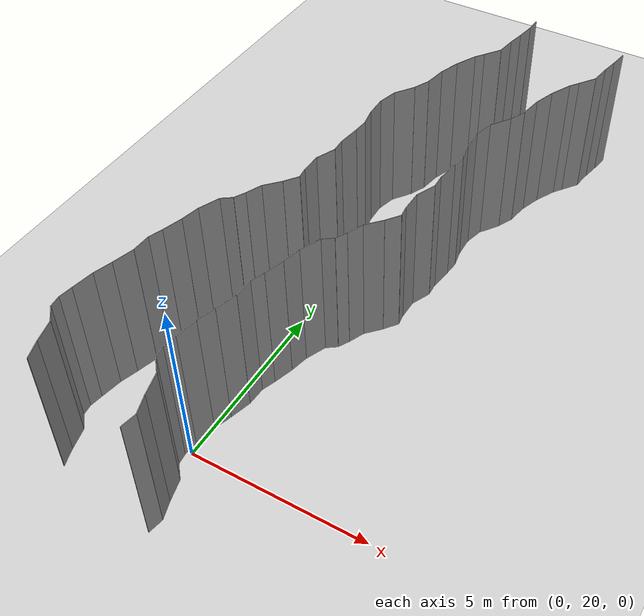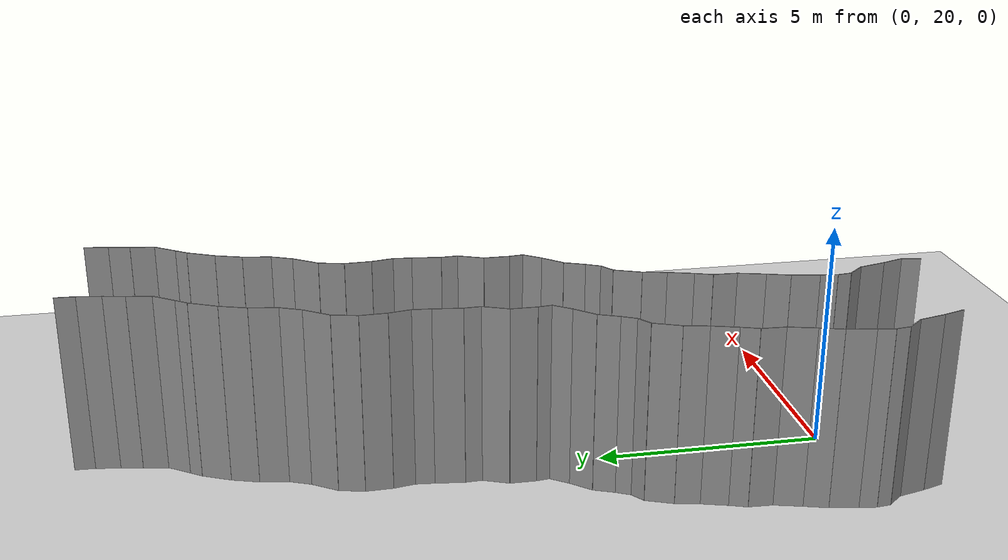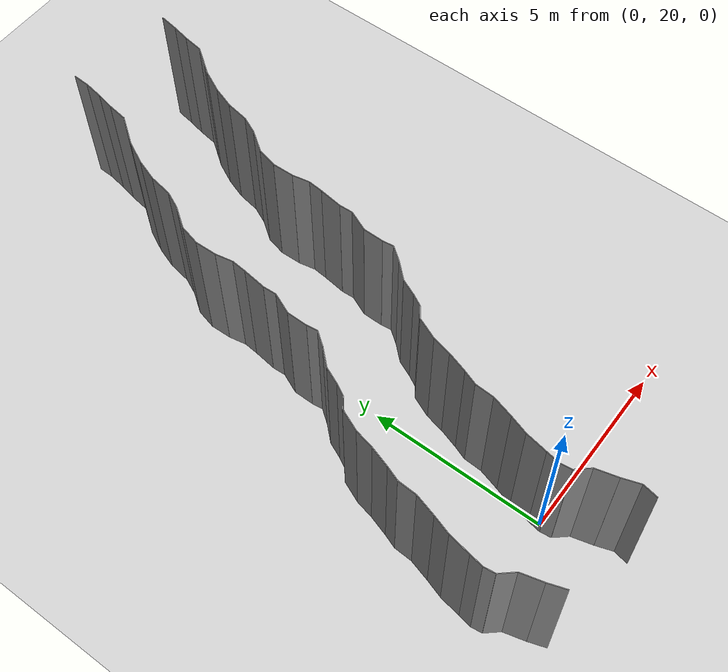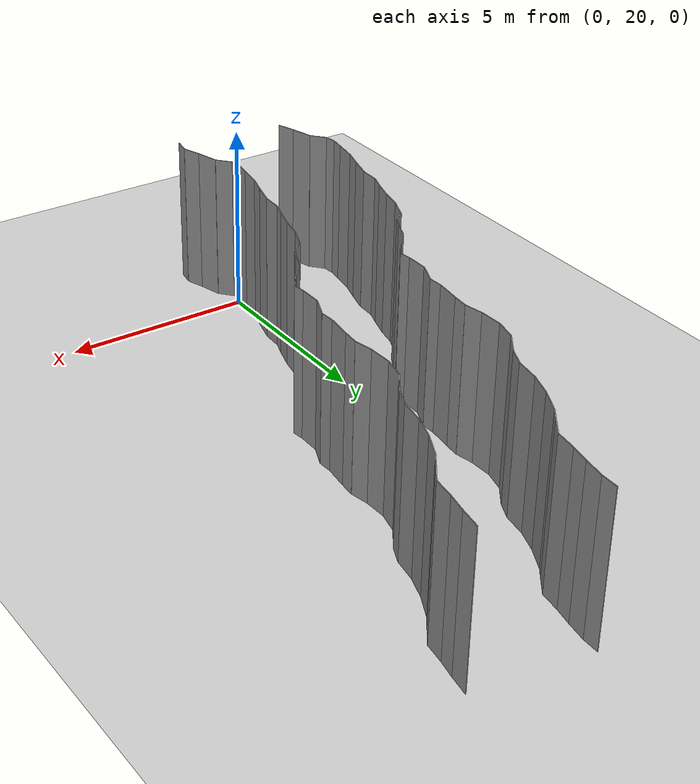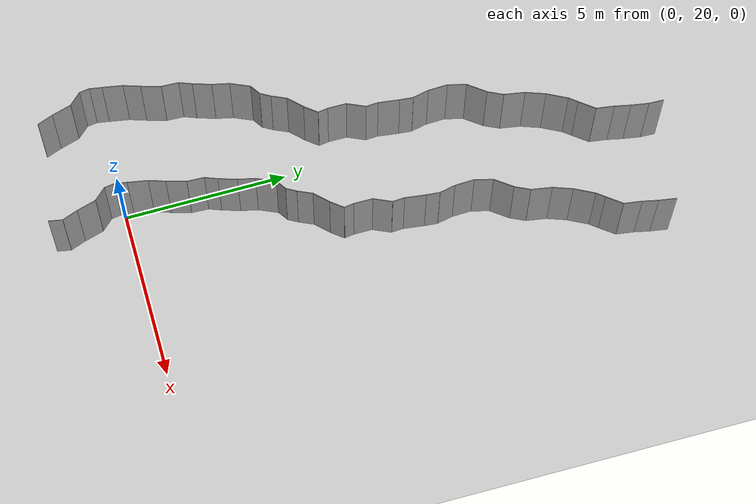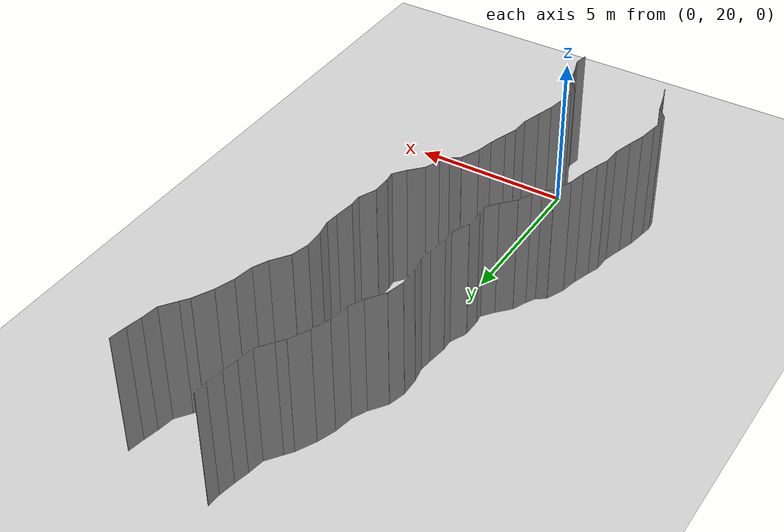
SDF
<sdf version="1.6">
 <world name="default">
  <model name="ground_plane">
   <static>1</static>
   <link name="link">
    <collision name="collision">
     <geometry><plane><normal>0 0 1</normal><size>200 200</size></plane></geometry>
     <surface><friction><ode><mu>100</mu><mu2>50</mu2></ode></friction></surface>
    </collision>
    <visual name="visual">
     <cast_shadows>0</cast_shadows>
     <geometry><plane><normal>0 0 1</normal><size>200 200</size></plane></geometry>
     <material>
      <script><uri>file://media/materials/scripts/gazebo.material</uri><name>Gazebo/Grey</name></script>
     </material>
    </visual>
   </link>
   <pose>0 100 0 0 -0 0</pose>
  </model>
  <model name="wall_73">
   <static>1</static>
   <pose>0.48561682938217876 17.948344836911566 2 0 0 -0.1761262419085541</pose>
   <link name="link">
    <collision name="collision"><geometry><box><size>0.02 0.427824801418 4</size></box></geometry></collision>
    <visual name="visual">
     <material>
      <script><name>Gazebo/Grey</name><uri>file://media/materials/scripts/gazebo.material</uri></script>
     </material>
     <geometry><box><size>0.02 0.427824801418 4</size></box></geometry>
    </visual>
   </link>
  </model>
  <model name="wall_74">
   <static>1</static>
   <pose>-2.5577974521057794 18.39851629489855 2 0 0 0.32564977725428645</pose>
   <link name="link">
    <collision name="collision"><geometry><box><size>0.02 0.505715504554 4</size></box></geometry></collision>
    <visual name="visual">
     <material>
      <script><name>Gazebo/Grey</name><uri>file://media/materials/scripts/gazebo.material</uri></script>
     </material>
     <geometry><box><size>0.02 0.505715504554 4</size></box></geometry>
    </visual>
   </link>
  </model>
  <model name="wall_75">
   <static>1</static>
   <pose>0.44220254789422064 18.39851629489855 2 0 0 0.32564977725428645</pose>
   <link name="link">
    <collision name="collision"><geometry><box><size>0.02 0.505715504554 4</size></box></geometry></collision>
    <visual name="visual">
     <material>
      <script><name>Gazebo/Grey</name><uri>file://media/materials/scripts/gazebo.material</uri></script>
     </material>
     <geometry><box><size>0.02 0.505715504554 4</size></box></geometry>
    </visual>
   </link>
  </model>
  <model name="wall_76">
   <static>1</static>
   <pose>-2.7177749737235346 18.9368754607309 2 0 0 0.25874099727943234</pose>
   <link name="link">
    <collision name="collision"><geometry><box><size>0.02 0.618158408024 4</size></box></geometry></collision>
    <visual name="visual">
     <material>
      <script><name>Gazebo/Grey</name><uri>file://media/materials/scripts/gazebo.material</uri></script>
     </material>
     <geometry><box><size>0.02 0.618158408024 4</size></box></geometry>
    </visual>
   </link>
  </model>
  <model name="wall_77">
   <static>1</static>
   <pose>0.2822250262764654 18.9368754607309 2 0 0 0.25874099727943234</pose>
   <link name="link">
    <collision name="collision"><geometry><box><size>0.02 0.618158408024 4</size></box></geometry></collision>
    <visual name="visual">
     <material>
      <script><name>Gazebo/Grey</name><uri>file://media/materials/scripts/gazebo.material</uri></script>
     </material>
     <geometry><box><size>0.02 0.618158408024 4</size></box></geometry>
    </visual>
   </link>
  </model>
  <model name="wall_78">
   <static>1</static>
   <pose>-2.9493755194007756 19.410305596714846 2 0 0 0.7178855796985041</pose>
   <link name="link">
    <collision name="collision"><geometry><box><size>0.02 0.463727275413 4</size></box></geometry></collision>
    <visual name="visual">
     <material>
      <script><name>Gazebo/Grey</name><uri>file://media/materials/scripts/gazebo.material</uri></script>
     </material>
     <geometry><box><size>0.02 0.463727275413 4</size></box></geometry>
    </visual>
   </link>
  </model>
  <model name="wall_79">
   <static>1</static>
   <pose>0.05062448059922442 19.410305596714846 2 0 0 0.7178855796985041</pose>
   <link name="link">
    <collision name="collision"><geometry><box><size>0.02 0.463727275413 4</size></box></geometry></collision>
    <visual name="visual">
     <material>
      <script><name>Gazebo/Grey</name><uri>file://media/materials/scripts/gazebo.material</uri></script>
     </material>
     <geometry><box><size>0.02 0.463727275413 4</size></box></geometry>
    </visual>
   </link>
  </model>
  <model name="wall_80">
   <static>1</static>
   <pose>-3.1224642835979983 19.74097408407429 2 0 0 0.13108063142375748</pose>
   <link name="link">
    <collision name="collision"><geometry><box><size>0.02 0.314758638549 4</size></box></geometry></collision>
    <visual name="visual">
     <material>
      <script><name>Gazebo/Grey</name><uri>file://media/materials/scripts/gazebo.material</uri></script>
     </material>
     <geometry><box><size>0.02 0.314758638549 4</size></box></geometry>
    </visual>
   </link>
  </model>
  <model name="wall_81">
   <static>1</static>
   <pose>-0.12246428359799832 19.74097408407429 2 0 0 0.13108063142375748</pose>
   <link name="link">
    <collision name="collision"><geometry><box><size>0.02 0.314758638549 4</size></box></geometry></collision>
    <visual name="visual">
     <material>
      <script><name>Gazebo/Grey</name><uri>file://media/materials/scripts/gazebo.material</uri></script>
     </material>
     <geometry><box><size>0.02 0.314758638549 4</size></box></geometry>
    </visual>
   </link>
  </model>
  <model name="wall_82">
   <static>1</static>
   <pose>-3.1129655708371335 20.08389745159527 2 0 0 -0.1595211788571715</pose>
   <link name="link">
    <collision name="collision"><geometry><box><size>0.02 0.378595189887 4</size></box></geometry></collision>
    <visual name="visual">
     <material>
      <script><name>Gazebo/Grey</name><uri>file://media/materials/scripts/gazebo.material</uri></script>
     </material>
     <geometry><box><size>0.02 0.378595189887 4</size></box></geometry>
    </visual>
   </link>
  </model>
  <model name="wall_83">
   <static>1</static>
   <pose>-0.11296557083713354 20.08389745159527 2 0 0 -0.1595211788571715</pose>
   <link name="link">
    <collision name="collision"><geometry><box><size>0.02 0.378595189887 4</size></box></geometry></collision>
    <visual name="visual">
     <material>
      <script><name>Gazebo/Grey</name><uri>file://media/materials/scripts/gazebo.material</uri></script>
     </material>
     <geometry><box><size>0.02 0.378595189887 4</size></box></geometry>
    </visual>
   </link>
  </model>
  <model name="wall_84">
   <static>1</static>
   <pose>-3.030855290555757 20.57789374265384 2 0 0 -0.16786428680608062</pose>
   <link name="link">
    <collision name="collision"><geometry><box><size>0.02 0.622960675578 4</size></box></geometry></collision>
    <visual name="visual">
     <material>
      <script><name>Gazebo/Grey</name><uri>file://media/materials/scripts/gazebo.material</uri></script>
     </material>
     <geometry><box><size>0.02 0.622960675578 4</size></box></geometry>
    </visual>
   </link>
  </model>
  <model name="wall_85">
   <static>1</static>
   <pose>-0.030855290555757087 20.57789374265384 2 0 0 -0.16786428680608062</pose>
   <link name="link">
    <collision name="collision"><geometry><box><size>0.02 0.622960675578 4</size></box></geometry></collision>
    <visual name="visual">
     <material>
      <script><name>Gazebo/Grey</name><uri>file://media/materials/scripts/gazebo.material</uri></script>
     </material>
     <geometry><box><size>0.02 0.622960675578 4</size></box></geometry>
    </visual>
   </link>
  </model>
  <model name="wall_86">
   <static>1</static>
   <pose>-2.9006292514241028 21.135343340064225 2 0 0 -0.30270741947423524</pose>
   <link name="link">
    <collision name="collision"><geometry><box><size>0.02 0.524544472162 4</size></box></geometry></collision>
    <visual name="visual">
     <material>
      <script><name>Gazebo/Grey</name><uri>file://media/materials/scripts/gazebo.material</uri></script>
     </material>
     <geometry><box><size>0.02 0.524544472162 4</size></box></geometry>
    </visual>
   </link>
  </model>
  <model name="wall_87">
   <static>1</static>
   <pose>0.09937074857589723 21.135343340064225 2 0 0 -0.30270741947423524</pose>
   <link name="link">
    <collision name="collision"><geometry><box><size>0.02 0.524544472162 4</size></box></geometry></collision>
    <visual name="visual">
     <material>
      <script><name>Gazebo/Grey</name><uri>file://media/materials/scripts/gazebo.material</uri></script>
     </material>
     <geometry><box><size>0.02 0.524544472162 4</size></box></geometry>
    </visual>
   </link>
  </model>
  <model name="wall_88">
   <static>1</static>
   <pose>-2.7397760829196005 21.682706921311766 2 0 0 -0.2714589706400116</pose>
   <link name="link">
    <collision name="collision"><geometry><box><size>0.02 0.616612103579 4</size></box></geometry></collision>
    <visual name="visual">
     <material>
      <script><name>Gazebo/Grey</name><uri>file://media/materials/scripts/gazebo.material</uri></script>
     </material>
     <geometry><box><size>0.02 0.616612103579 4</size></box></geometry>
    </visual>
   </link>
  </model>
  <model name="wall_89">
   <static>1</static>
   <pose>0.2602239170803995 21.682706921311766 2 0 0 -0.2714589706400116</pose>
   <link name="link">
    <collision name="collision"><geometry><box><size>0.02 0.616612103579 4</size></box></geometry></collision>
    <visual name="visual">
     <material>
      <script><name>Gazebo/Grey</name><uri>file://media/materials/scripts/gazebo.material</uri></script>
     </material>
     <geometry><box><size>0.02 0.616612103579 4</size></box></geometry>
    </visual>
   </link>
  </model>
  <model name="wall_90">
   <static>1</static>
   <pose>-2.6460774361162382 22.24322720459198 2 0 0 -0.041835652240367435</pose>
   <link name="link">
    <collision name="collision"><geometry><box><size>0.02 0.527469883162 4</size></box></geometry></collision>
    <visual name="visual">
     <material>
      <script><name>Gazebo/Grey</name><uri>file://media/materials/scripts/gazebo.material</uri></script>
     </material>
     <geometry><box><size>0.02 0.527469883162 4</size></box></geometry>
    </visual>
   </link>
  </model>
  <model name="wall_91">
   <static>1</static>
   <pose>0.35392256388376175 22.24322720459198 2 0 0 -0.041835652240367435</pose>
   <link name="link">
    <collision name="collision"><geometry><box><size>0.02 0.527469883162 4</size></box></geometry></collision>
    <visual name="visual">
     <material>
      <script><name>Gazebo/Grey</name><uri>file://media/materials/scripts/gazebo.material</uri></script>
     </material>
     <geometry><box><size>0.02 0.527469883162 4</size></box></geometry>
    </visual>
   </link>
  </model>
  <model name="wall_92">
   <static>1</static>
   <pose>-2.5668960391070046 22.695534877558856 2 0 0 -0.3464079077855175</pose>
   <link name="link">
    <collision name="collision"><geometry><box><size>0.02 0.401454012687 4</size></box></geometry></collision>
    <visual name="visual">
     <material>
      <script><name>Gazebo/Grey</name><uri>file://media/materials/scripts/gazebo.material</uri></script>
     </material>
     <geometry><box><size>0.02 0.401454012687 4</size></box></geometry>
    </visual>
   </link>
  </model>
  <model name="wall_93">
   <static>1</static>
   <pose>0.4331039608929954 22.695534877558856 2 0 0 -0.3464079077855175</pose>
   <link name="link">
    <collision name="collision"><geometry><box><size>0.02 0.401454012687 4</size></box></geometry></collision>
    <visual name="visual">
     <material>
      <script><name>Gazebo/Grey</name><uri>file://media/materials/scripts/gazebo.material</uri></script>
     </material>
     <geometry><box><size>0.02 0.401454012687 4</size></box></geometry>
    </visual>
   </link>
  </model>
  <model name="wall_94">
   <static>1</static>
   <pose>-2.413424180653308 23.16207593375481 2 0 0 -0.2980484412434623</pose>
   <link name="link">
    <collision name="collision"><geometry><box><size>0.02 0.581094780806 4</size></box></geometry></collision>
    <visual name="visual">
     <material>
      <script><name>Gazebo/Grey</name><uri>file://media/materials/scripts/gazebo.material</uri></script>
     </material>
     <geometry><box><size>0.02 0.581094780806 4</size></box></geometry>
    </visual>
   </link>
  </model>
  <model name="wall_95">
   <static>1</static>
   <pose>0.5865758193466921 23.16207593375481 2 0 0 -0.2980484412434623</pose>
   <link name="link">
    <collision name="collision"><geometry><box><size>0.02 0.581094780806 4</size></box></geometry></collision>
    <visual name="visual">
     <material>
      <script><name>Gazebo/Grey</name><uri>file://media/materials/scripts/gazebo.material</uri></script>
     </material>
     <geometry><box><size>0.02 0.581094780806 4</size></box></geometry>
    </visual>
   </link>
  </model>
  <model name="wall_96">
   <static>1</static>
   <pose>-2.272002610550559 23.7005191263306 2 0 0 -0.21195614067637977</pose>
   <link name="link">
    <collision name="collision"><geometry><box><size>0.02 0.533346890577 4</size></box></geometry></collision>
    <visual name="visual">
     <material>
      <script><name>Gazebo/Grey</name><uri>file://media/materials/scripts/gazebo.material</uri></script>
     </material>
     <geometry><box><size>0.02 0.533346890577 4</size></box></geometry>
    </visual>
   </link>
  </model>
  <model name="wall_97">
   <static>1</static>
   <pose>0.7279973894494409 23.7005191263306 2 0 0 -0.21195614067637977</pose>
   <link name="link">
    <collision name="collision"><geometry><box><size>0.02 0.533346890577 4</size></box></geometry></collision>
    <visual name="visual">
     <material>
      <script><name>Gazebo/Grey</name><uri>file://media/materials/scripts/gazebo.material</uri></script>
     </material>
     <geometry><box><size>0.02 0.533346890577 4</size></box></geometry>
    </visual>
   </link>
  </model>
  <model name="wall_98">
   <static>1</static>
   <pose>-2.093982090859627 24.249827132040704 2 0 0 -0.3997077439559986</pose>
   <link name="link">
    <collision name="collision"><geometry><box><size>0.02 0.62659635369 4</size></box></geometry></collision>
    <visual name="visual">
     <material>
      <script><name>Gazebo/Grey</name><uri>file://media/materials/scripts/gazebo.material</uri></script>
     </material>
     <geometry><box><size>0.02 0.62659635369 4</size></box></geometry>
    </visual>
   </link>
  </model>
  <model name="wall_99">
   <static>1</static>
   <pose>0.9060179091403731 24.249827132040704 2 0 0 -0.3997077439559986</pose>
   <link name="link">
    <collision name="collision"><geometry><box><size>0.02 0.62659635369 4</size></box></geometry></collision>
    <visual name="visual">
     <material>
      <script><name>Gazebo/Grey</name><uri>file://media/materials/scripts/gazebo.material</uri></script>
     </material>
     <geometry><box><size>0.02 0.62659635369 4</size></box></geometry>
    </visual>
   </link>
  </model>
  <model name="wall_100">
   <static>1</static>
   <pose>-1.8314543736609947 24.63983607227504 2 0 0 -0.9459830643520981</pose>
   <link name="link">
    <collision name="collision"><geometry><box><size>0.02 0.346721222843 4</size></box></geometry></collision>
    <visual name="visual">
     <material>
      <script><name>Gazebo/Grey</name><uri>file://media/materials/scripts/gazebo.material</uri></script>
     </material>
     <geometry><box><size>0.02 0.346721222843 4</size></box></geometry>
    </visual>
   </link>
  </model>
  <model name="wall_101">
   <static>1</static>
   <pose>1.1685456263390053 24.63983607227504 2 0 0 -0.9459830643520981</pose>
   <link name="link">
    <collision name="collision"><geometry><box><size>0.02 0.346721222843 4</size></box></geometry></collision>
    <visual name="visual">
     <material>
      <script><name>Gazebo/Grey</name><uri>file://media/materials/scripts/gazebo.material</uri></script>
     </material>
     <geometry><box><size>0.02 0.346721222843 4</size></box></geometry>
    </visual>
   </link>
  </model>
  <model name="wall_102">
   <static>1</static>
   <pose>-1.609364156749479 24.8929756276632 2 0 0 -0.49281583727391537</pose>
   <link name="link">
    <collision name="collision"><geometry><box><size>0.02 0.344454650579 4</size></box></geometry></collision>
    <visual name="visual">
     <material>
      <script><name>Gazebo/Grey</name><uri>file://media/materials/scripts/gazebo.material</uri></script>
     </material>
     <geometry><box><size>0.02 0.344454650579 4</size></box></geometry>
    </visual>
   </link>
  </model>
  <model name="wall_103">
   <static>1</static>
   <pose>1.390635843250521 24.8929756276632 2 0 0 -0.49281583727391537</pose>
   <link name="link">
    <collision name="collision"><geometry><box><size>0.02 0.344454650579 4</size></box></geometry></collision>
    <visual name="visual">
     <material>
      <script><name>Gazebo/Grey</name><uri>file://media/materials/scripts/gazebo.material</uri></script>
     </material>
     <geometry><box><size>0.02 0.344454650579 4</size></box></geometry>
    </visual>
   </link>
  </model>
  <model name="wall_104">
   <static>1</static>
   <pose>-1.4328788710410072 25.265101364195974 2 0 0 -0.40699449431700274</pose>
   <link name="link">
    <collision name="collision"><geometry><box><size>0.02 0.479993942725 4</size></box></geometry></collision>
    <visual name="visual">
     <material>
      <script><name>Gazebo/Grey</name><uri>file://media/materials/scripts/gazebo.material</uri></script>
     </material>
     <geometry><box><size>0.02 0.479993942725 4</size></box></geometry>
    </visual>
   </link>
  </model>
  <model name="wall_105">
   <static>1</static>
   <pose>1.5671211289589928 25.265101364195974 2 0 0 -0.40699449431700274</pose>
   <link name="link">
    <collision name="collision"><geometry><box><size>0.02 0.479993942725 4</size></box></geometry></collision>
    <visual name="visual">
     <material>
      <script><name>Gazebo/Grey</name><uri>file://media/materials/scripts/gazebo.material</uri></script>
     </material>
     <geometry><box><size>0.02 0.479993942725 4</size></box></geometry>
    </visual>
   </link>
  </model>
  <model name="wall_106">
   <static>1</static>
   <pose>-1.149495473005451 25.691173592252277 2 0 0 -0.7415265167119655</pose>
   <link name="link">
    <collision name="collision"><geometry><box><size>0.02 0.557821465762 4</size></box></geometry></collision>
    <visual name="visual">
     <material>
      <script><name>Gazebo/Grey</name><uri>file://media/materials/scripts/gazebo.material</uri></script>
     </material>
     <geometry><box><size>0.02 0.557821465762 4</size></box></geometry>
    </visual>
   </link>
  </model>
  <model name="wall_107">
   <static>1</static>
   <pose>1.850504526994549 25.691173592252277 2 0 0 -0.7415265167119655</pose>
   <link name="link">
    <collision name="collision"><geometry><box><size>0.02 0.557821465762 4</size></box></geometry></collision>
    <visual name="visual">
     <material>
      <script><name>Gazebo/Grey</name><uri>file://media/materials/scripts/gazebo.material</uri></script>
     </material>
     <geometry><box><size>0.02 0.557821465762 4</size></box></geometry>
    </visual>
   </link>
  </model>
  <model name="wall_108">
   <static>1</static>
   <pose>-0.8227582788850886 26.082704461556784 2 0 0 -0.6399389434154905</pose>
   <link name="link">
    <collision name="collision"><geometry><box><size>0.02 0.463393400535 4</size></box></geometry></collision>
    <visual name="visual">
     <material>
      <script><name>Gazebo/Grey</name><uri>file://media/materials/scripts/gazebo.material</uri></script>
     </material>
     <geometry><box><size>0.02 0.463393400535 4</size></box></geometry>
    </visual>
   </link>
  </model>
  <model name="wall_109">
   <static>1</static>
   <pose>2.1772417211149113 26.082704461556784 2 0 0 -0.6399389434154905</pose>
   <link name="link">
    <collision name="collision"><geometry><box><size>0.02 0.463393400535 4</size></box></geometry></collision>
    <visual name="visual">
     <material>
      <script><name>Gazebo/Grey</name><uri>file://media/materials/scripts/gazebo.material</uri></script>
     </material>
     <geometry><box><size>0.02 0.463393400535 4</size></box></geometry>
    </visual>
   </link>
  </model>
  <model name="wall_110">
   <static>1</static>
   <pose>-0.7044751581750783 26.418018930919217 2 0 0 0.13350680263673725</pose>
   <link name="link">
    <collision name="collision"><geometry><box><size>0.02 0.301610131373 4</size></box></geometry></collision>
    <visual name="visual">
     <material>
      <script><name>Gazebo/Grey</name><uri>file://media/materials/scripts/gazebo.material</uri></script>
     </material>
     <geometry><box><size>0.02 0.301610131373 4</size></box></geometry>
    </visual>
   </link>
  </model>
  <model name="wall_111">
   <static>1</static>
   <pose>2.2955248418249217 26.418018930919217 2 0 0 0.13350680263673725</pose>
   <link name="link">
    <collision name="collision"><geometry><box><size>0.02 0.301610131373 4</size></box></geometry></collision>
    <visual name="visual">
     <material>
      <script><name>Gazebo/Grey</name><uri>file://media/materials/scripts/gazebo.material</uri></script>
     </material>
     <geometry><box><size>0.02 0.301610131373 4</size></box></geometry>
    </visual>
   </link>
  </model>
  <model name="wall_112">
   <static>1</static>
   <pose>-0.7232320259687921 26.85483173941724 2 0 0 -0.004582806721476625</pose>
   <link name="link">
    <collision name="collision"><geometry><box><size>0.02 0.574705489965 4</size></box></geometry></collision>
    <visual name="visual">
     <material>
      <script><name>Gazebo/Grey</name><uri>file://media/materials/scripts/gazebo.material</uri></script>
     </material>
     <geometry><box><size>0.02 0.574705489965 4</size></box></geometry>
    </visual>
   </link>
  </model>
  <model name="wall_113">
   <static>1</static>
   <pose>2.276767974031208 26.85483173941724 2 0 0 -0.004582806721476625</pose>
   <link name="link">
    <collision name="collision"><geometry><box><size>0.02 0.574705489965 4</size></box></geometry></collision>
    <visual name="visual">
     <material>
      <script><name>Gazebo/Grey</name><uri>file://media/materials/scripts/gazebo.material</uri></script>
     </material>
     <geometry><box><size>0.02 0.574705489965 4</size></box></geometry>
    </visual>
   </link>
  </model>
  <model name="wall_114">
   <static>1</static>
   <pose>-0.604225484621398 27.416242900881784 2 0 0 -0.40561524898476337</pose>
   <link name="link">
    <collision name="collision"><geometry><box><size>0.02 0.596525025723 4</size></box></geometry></collision>
    <visual name="visual">
     <material>
      <script><name>Gazebo/Grey</name><uri>file://media/materials/scripts/gazebo.material</uri></script>
     </material>
     <geometry><box><size>0.02 0.596525025723 4</size></box></geometry>
    </visual>
   </link>
  </model>
  <model name="wall_115">
   <static>1</static>
   <pose>2.395774515378602 27.416242900881784 2 0 0 -0.40561524898476337</pose>
   <link name="link">
    <collision name="collision"><geometry><box><size>0.02 0.596525025723 4</size></box></geometry></collision>
    <visual name="visual">
     <material>
      <script><name>Gazebo/Grey</name><uri>file://media/materials/scripts/gazebo.material</uri></script>
     </material>
     <geometry><box><size>0.02 0.596525025723 4</size></box></geometry>
    </visual>
   </link>
  </model>
  <model name="wall_116">
   <static>1</static>
   <pose>-0.4962465564187786 27.873859306259224 2 0 0 0.05285441904187655</pose>
   <link name="link">
    <collision name="collision"><geometry><box><size>0.02 0.367623317596 4</size></box></geometry></collision>
    <visual name="visual">
     <material>
      <script><name>Gazebo/Grey</name><uri>file://media/materials/scripts/gazebo.material</uri></script>
     </material>
     <geometry><box><size>0.02 0.367623317596 4</size></box></geometry>
    </visual>
   </link>
  </model>
  <model name="wall_117">
   <static>1</static>
   <pose>2.503753443581221 27.873859306259224 2 0 0 0.05285441904187655</pose>
   <link name="link">
    <collision name="collision"><geometry><box><size>0.02 0.367623317596 4</size></box></geometry></collision>
    <visual name="visual">
     <material>
      <script><name>Gazebo/Grey</name><uri>file://media/materials/scripts/gazebo.material</uri></script>
     </material>
     <geometry><box><size>0.02 0.367623317596 4</size></box></geometry>
    </visual>
   </link>
  </model>
  <model name="wall_118">
   <static>1</static>
   <pose>-0.4650553603956881 28.379688372109793 2 0 0 -0.1262416591234224</pose>
   <link name="link">
    <collision name="collision"><geometry><box><size>0.02 0.649718585156 4</size></box></geometry></collision>
    <visual name="visual">
     <material>
      <script><name>Gazebo/Grey</name><uri>file://media/materials/scripts/gazebo.material</uri></script>
     </material>
     <geometry><box><size>0.02 0.649718585156 4</size></box></geometry>
    </visual>
   </link>
  </model>
  <model name="wall_119">
   <static>1</static>
   <pose>2.534944639604312 28.379688372109793 2 0 0 -0.1262416591234224</pose>
   <link name="link">
    <collision name="collision"><geometry><box><size>0.02 0.649718585156 4</size></box></geometry></collision>
    <visual name="visual">
     <material>
      <script><name>Gazebo/Grey</name><uri>file://media/materials/scripts/gazebo.material</uri></script>
     </material>
     <geometry><box><size>0.02 0.649718585156 4</size></box></geometry>
    </visual>
   </link>
  </model>
  <model name="wall_120">
   <static>1</static>
   <pose>-0.4059628940237275 28.906397194832962 2 0 0 -0.08874595073365424</pose>
   <link name="link">
    <collision name="collision"><geometry><box><size>0.02 0.410484853183 4</size></box></geometry></collision>
    <visual name="visual">
     <material>
      <script><name>Gazebo/Grey</name><uri>file://media/materials/scripts/gazebo.material</uri></script>
     </material>
     <geometry><box><size>0.02 0.410484853183 4</size></box></geometry>
    </visual>
   </link>
  </model>
  <model name="wall_121">
   <static>1</static>
   <pose>2.5940371059762724 28.906397194832962 2 0 0 -0.08874595073365424</pose>
   <link name="link">
    <collision name="collision"><geometry><box><size>0.02 0.410484853183 4</size></box></geometry></collision>
    <visual name="visual">
     <material>
      <script><name>Gazebo/Grey</name><uri>file://media/materials/scripts/gazebo.material</uri></script>
     </material>
     <geometry><box><size>0.02 0.410484853183 4</size></box></geometry>
    </visual>
   </link>
  </model>
  <model name="wall_122">
   <static>1</static>
   <pose>-0.43454046970502835 29.351389027124053 2 0 0 0.19202045041704485</pose>
   <link name="link">
    <collision name="collision"><geometry><box><size>0.02 0.490122337563 4</size></box></geometry></collision>
    <visual name="visual">
     <material>
      <script><name>Gazebo/Grey</name><uri>file://media/materials/scripts/gazebo.material</uri></script>
     </material>
     <geometry><box><size>0.02 0.490122337563 4</size></box></geometry>
    </visual>
   </link>
  </model>
  <model name="wall_123">
   <static>1</static>
   <pose>2.5654595302949716 29.351389027124053 2 0 0 0.19202045041704485</pose>
   <link name="link">
    <collision name="collision"><geometry><box><size>0.02 0.490122337563 4</size></box></geometry></collision>
    <visual name="visual">
     <material>
      <script><name>Gazebo/Grey</name><uri>file://media/materials/scripts/gazebo.material</uri></script>
     </material>
     <geometry><box><size>0.02 0.490122337563 4</size></box></geometry>
    </visual>
   </link>
  </model>
  <model name="wall_124">
   <static>1</static>
   <pose>-0.49066287284854226 29.889465412661675 2 0 0 0.03143060916895852</pose>
   <link name="link">
    <collision name="collision"><geometry><box><size>0.02 0.595332598351 4</size></box></geometry></collision>
    <visual name="visual">
     <material>
      <script><name>Gazebo/Grey</name><uri>file://media/materials/scripts/gazebo.material</uri></script>
     </material>
     <geometry><box><size>0.02 0.595332598351 4</size></box></geometry>
    </visual>
   </link>
  </model>
  <model name="wall_125">
   <static>1</static>
   <pose>2.5093371271514577 29.889465412661675 2 0 0 0.03143060916895852</pose>
   <link name="link">
    <collision name="collision"><geometry><box><size>0.02 0.595332598351 4</size></box></geometry></collision>
    <visual name="visual">
     <material>
      <script><name>Gazebo/Grey</name><uri>file://media/materials/scripts/gazebo.material</uri></script>
     </material>
     <geometry><box><size>0.02 0.595332598351 4</size></box></geometry>
    </visual>
   </link>
  </model>
  <model name="wall_126">
   <static>1</static>
   <pose>-0.43157245315513637 30.463033272229243 2 0 0 -0.24304309276497452</pose>
   <link name="link">
    <collision name="collision"><geometry><box><size>0.02 0.568814543104 4</size></box></geometry></collision>
    <visual name="visual">
     <material>
      <script><name>Gazebo/Grey</name><uri>file://media/materials/scripts/gazebo.material</uri></script>
     </material>
     <geometry><box><size>0.02 0.568814543104 4</size></box></geometry>
    </visual>
   </link>
  </model>
  <model name="wall_127">
   <static>1</static>
   <pose>2.5684275468448634 30.463033272229243 2 0 0 -0.24304309276497452</pose>
   <link name="link">
    <collision name="collision"><geometry><box><size>0.02 0.568814543104 4</size></box></geometry></collision>
    <visual name="visual">
     <material>
      <script><name>Gazebo/Grey</name><uri>file://media/materials/scripts/gazebo.material</uri></script>
     </material>
     <geometry><box><size>0.02 0.568814543104 4</size></box></geometry>
    </visual>
   </link>
  </model>
  <model name="wall_128">
   <static>1</static>
   <pose>-0.1756368707736632 31.004477063813624 2 0 0 -0.6150478049941955</pose>
   <link name="link">
    <collision name="collision"><geometry><box><size>0.02 0.649884437925 4</size></box></geometry></collision>
    <visual name="visual">
     <material>
      <script><name>Gazebo/Grey</name><uri>file://media/materials/scripts/gazebo.material</uri></script>
     </material>
     <geometry><box><size>0.02 0.649884437925 4</size></box></geometry>
    </visual>
   </link>
  </model>
  <model name="wall_129">
   <static>1</static>
   <pose>2.8243631292263367 31.004477063813624 2 0 0 -0.6150478049941955</pose>
   <link name="link">
    <collision name="collision"><geometry><box><size>0.02 0.649884437925 4</size></box></geometry></collision>
    <visual name="visual">
     <material>
      <script><name>Gazebo/Grey</name><uri>file://media/materials/scripts/gazebo.material</uri></script>
     </material>
     <geometry><box><size>0.02 0.649884437925 4</size></box></geometry>
    </visual>
   </link>
  </model>
  <model name="wall_130">
   <static>1</static>
   <pose>0.11633754994067329 31.49865740116757 2 0 0 -0.4284022012553389</pose>
   <link name="link">
    <collision name="collision"><geometry><box><size>0.02 0.503028608618 4</size></box></geometry></collision>
    <visual name="visual">
     <material>
      <script><name>Gazebo/Grey</name><uri>file://media/materials/scripts/gazebo.material</uri></script>
     </material>
     <geometry><box><size>0.02 0.503028608618 4</size></box></geometry>
    </visual>
   </link>
  </model>
  <model name="wall_131">
   <static>1</static>
   <pose>3.116337549940673 31.49865740116757 2 0 0 -0.4284022012553389</pose>
   <link name="link">
    <collision name="collision"><geometry><box><size>0.02 0.503028608618 4</size></box></geometry></collision>
    <visual name="visual">
     <material>
      <script><name>Gazebo/Grey</name><uri>file://media/materials/scripts/gazebo.material</uri></script>
     </material>
     <geometry><box><size>0.02 0.503028608618 4</size></box></geometry>
    </visual>
   </link>
  </model>
  <model name="wall_132">
   <static>1</static>
   <pose>0.2722906171576107 32.04003008957828 2 0 0 -0.16319202393241758</pose>
   <link name="link">
    <collision name="collision"><geometry><box><size>0.02 0.63359323435 4</size></box></geometry></collision>
    <visual name="visual">
     <material>
      <script><name>Gazebo/Grey</name><uri>file://media/materials/scripts/gazebo.material</uri></script>
     </material>
     <geometry><box><size>0.02 0.63359323435 4</size></box></geometry>
    </visual>
   </link>
  </model>
  <model name="wall_133">
   <static>1</static>
   <pose>3.2722906171576107 32.04003008957828 2 0 0 -0.16319202393241758</pose>
   <link name="link">
    <collision name="collision"><geometry><box><size>0.02 0.63359323435 4</size></box></geometry></collision>
    <visual name="visual">
     <material>
      <script><name>Gazebo/Grey</name><uri>file://media/materials/scripts/gazebo.material</uri></script>
     </material>
     <geometry><box><size>0.02 0.63359323435 4</size></box></geometry>
    </visual>
   </link>
  </model>
  <model name="wall_134">
   <static>1</static>
   <pose>0.4245874828531972 32.64621441296108 2 0 0 -0.33080198762356017</pose>
   <link name="link">
    <collision name="collision"><geometry><box><size>0.02 0.620854930364 4</size></box></geometry></collision>
    <visual name="visual">
     <material>
      <script><name>Gazebo/Grey</name><uri>file://media/materials/scripts/gazebo.material</uri></script>
     </material>
     <geometry><box><size>0.02 0.620854930364 4</size></box></geometry>
    </visual>
   </link>
  </model>
  <model name="wall_135">
   <static>1</static>
   <pose>3.4245874828531973 32.64621441296108 2 0 0 -0.33080198762356017</pose>
   <link name="link">
    <collision name="collision"><geometry><box><size>0.02 0.620854930364 4</size></box></geometry></collision>
    <visual name="visual">
     <material>
      <script><name>Gazebo/Grey</name><uri>file://media/materials/scripts/gazebo.material</uri></script>
     </material>
     <geometry><box><size>0.02 0.620854930364 4</size></box></geometry>
    </visual>
   </link>
  </model>
  <model name="wall_136">
   <static>1</static>
   <pose>0.6746675276759322 33.24311251041342 2 0 0 -0.4573026343071359</pose>
   <link name="link">
    <collision name="collision"><geometry><box><size>0.02 0.676071206771 4</size></box></geometry></collision>
    <visual name="visual">
     <material>
      <script><name>Gazebo/Grey</name><uri>file://media/materials/scripts/gazebo.material</uri></script>
     </material>
     <geometry><box><size>0.02 0.676071206771 4</size></box></geometry>
    </visual>
   </link>
  </model>
  <model name="wall_137">
   <static>1</static>
   <pose>3.674667527675932 33.24311251041342 2 0 0 -0.4573026343071359</pose>
   <link name="link">
    <collision name="collision"><geometry><box><size>0.02 0.676071206771 4</size></box></geometry></collision>
    <visual name="visual">
     <material>
      <script><name>Gazebo/Grey</name><uri>file://media/materials/scripts/gazebo.material</uri></script>
     </material>
     <geometry><box><size>0.02 0.676071206771 4</size></box></geometry>
    </visual>
   </link>
  </model>
  <model name="wall_138">
   <static>1</static>
   <pose>0.9154545671669632 33.67049493580152 2 0 0 -0.6355810933673101</pose>
   <link name="link">
    <collision name="collision"><geometry><box><size>0.02 0.308380623303 4</size></box></geometry></collision>
    <visual name="visual">
     <material>
      <script><name>Gazebo/Grey</name><uri>file://media/materials/scripts/gazebo.material</uri></script>
     </material>
     <geometry><box><size>0.02 0.308380623303 4</size></box></geometry>
    </visual>
   </link>
  </model>
  <model name="wall_139">
   <static>1</static>
   <pose>3.915454567166963 33.67049493580152 2 0 0 -0.6355810933673101</pose>
   <link name="link">
    <collision name="collision"><geometry><box><size>0.02 0.308380623303 4</size></box></geometry></collision>
    <visual name="visual">
     <material>
      <script><name>Gazebo/Grey</name><uri>file://media/materials/scripts/gazebo.material</uri></script>
     </material>
     <geometry><box><size>0.02 0.308380623303 4</size></box></geometry>
    </visual>
   </link>
  </model>
  <model name="wall_140">
   <static>1</static>
   <pose>1.1733153089959436 34.025065049577684 2 0 0 -0.6250917314690135</pose>
   <link name="link">
    <collision name="collision"><geometry><box><size>0.02 0.568470446791 4</size></box></geometry></collision>
    <visual name="visual">
     <material>
      <script><name>Gazebo/Grey</name><uri>file://media/materials/scripts/gazebo.material</uri></script>
     </material>
     <geometry><box><size>0.02 0.568470446791 4</size></box></geometry>
    </visual>
   </link>
  </model>
  <model name="wall_141">
   <static>1</static>
   <pose>4.173315308995944 34.025065049577684 2 0 0 -0.6250917314690135</pose>
   <link name="link">
    <collision name="collision"><geometry><box><size>0.02 0.568470446791 4</size></box></geometry></collision>
    <visual name="visual">
     <material>
      <script><name>Gazebo/Grey</name><uri>file://media/materials/scripts/gazebo.material</uri></script>
     </material>
     <geometry><box><size>0.02 0.568470446791 4</size></box></geometry>
    </visual>
   </link>
  </model>
  <model name="wall_142">
   <static>1</static>
   <pose>1.3780691106465202 34.52685143911326 2 0 0 -0.14070710654466495</pose>
   <link name="link">
    <collision name="collision"><geometry><box><size>0.02 0.548010672363 4</size></box></geometry></collision>
    <visual name="visual">
     <material>
      <script><name>Gazebo/Grey</name><uri>file://media/materials/scripts/gazebo.material</uri></script>
     </material>
     <geometry><box><size>0.02 0.548010672363 4</size></box></geometry>
    </visual>
   </link>
  </model>
  <model name="wall_143">
   <static>1</static>
   <pose>4.37806911064652 34.52685143911326 2 0 0 -0.14070710654466495</pose>
   <link name="link">
    <collision name="collision"><geometry><box><size>0.02 0.548010672363 4</size></box></geometry></collision>
    <visual name="visual">
     <material>
      <script><name>Gazebo/Grey</name><uri>file://media/materials/scripts/gazebo.material</uri></script>
     </material>
     <geometry><box><size>0.02 0.548010672363 4</size></box></geometry>
    </visual>
   </link>
  </model>
  <model name="wall_144">
   <static>1</static>
   <pose>1.4653760365924542 35.036166685627045 2 0 0 -0.202544736919391</pose>
   <link name="link">
    <collision name="collision"><geometry><box><size>0.02 0.48597004353 4</size></box></geometry></collision>
    <visual name="visual">
     <material>
      <script><name>Gazebo/Grey</name><uri>file://media/materials/scripts/gazebo.material</uri></script>
     </material>
     <geometry><box><size>0.02 0.48597004353 4</size></box></geometry>
    </visual>
   </link>
  </model>
  <model name="wall_145">
   <static>1</static>
   <pose>4.465376036592454 35.036166685627045 2 0 0 -0.202544736919391</pose>
   <link name="link">
    <collision name="collision"><geometry><box><size>0.02 0.48597004353 4</size></box></geometry></collision>
    <visual name="visual">
     <material>
      <script><name>Gazebo/Grey</name><uri>file://media/materials/scripts/gazebo.material</uri></script>
     </material>
     <geometry><box><size>0.02 0.48597004353 4</size></box></geometry>
    </visual>
   </link>
  </model>
  <model name="wall_146">
   <static>1</static>
   <pose>1.557274823368433 35.542326584865165 2 0 0 -0.1590790131849911</pose>
   <link name="link">
    <collision name="collision"><geometry><box><size>0.02 0.543141961006 4</size></box></geometry></collision>
    <visual name="visual">
     <material>
      <script><name>Gazebo/Grey</name><uri>file://media/materials/scripts/gazebo.material</uri></script>
     </material>
     <geometry><box><size>0.02 0.543141961006 4</size></box></geometry>
    </visual>
   </link>
  </model>
  <model name="wall_147">
   <static>1</static>
   <pose>4.557274823368433 35.542326584865165 2 0 0 -0.1590790131849911</pose>
   <link name="link">
    <collision name="collision"><geometry><box><size>0.02 0.543141961006 4</size></box></geometry></collision>
    <visual name="visual">
     <material>
      <script><name>Gazebo/Grey</name><uri>file://media/materials/scripts/gazebo.material</uri></script>
     </material>
     <geometry><box><size>0.02 0.543141961006 4</size></box></geometry>
    </visual>
   </link>
  </model>
  <model name="wall_148">
   <static>1</static>
   <pose>1.6079357884552317 36.032615531792295 2 0 0 -0.03438574817152011</pose>
   <link name="link">
    <collision name="collision"><geometry><box><size>0.02 0.444556654903 4</size></box></geometry></collision>
    <visual name="visual">
     <material>
      <script><name>Gazebo/Grey</name><uri>file://media/materials/scripts/gazebo.material</uri></script>
     </material>
     <geometry><box><size>0.02 0.444556654903 4</size></box></geometry>
    </visual>
   </link>
  </model>
 </world>
</sdf>
